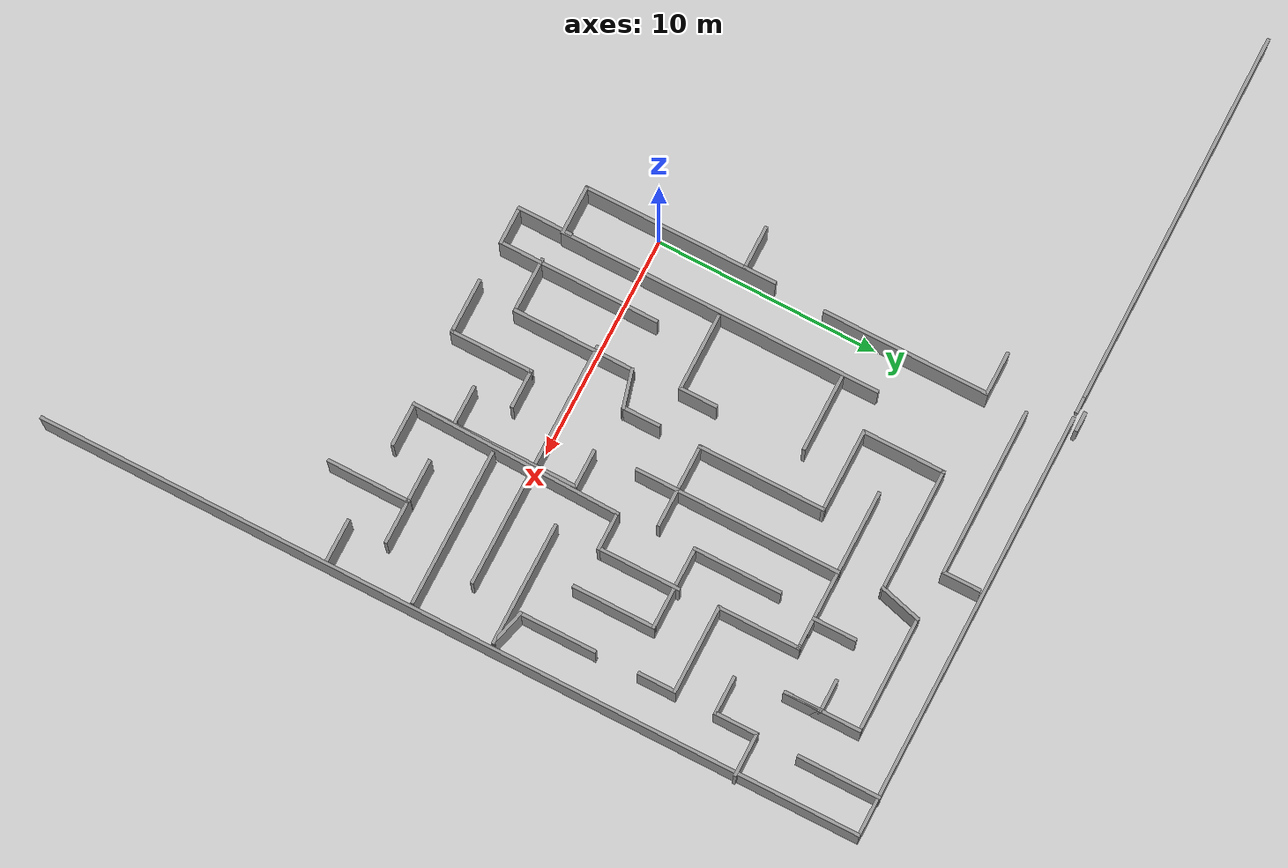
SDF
<sdf version="1.7">
 <world name="default">
  <model name="ground_plane">
   <static>1</static>
   <link name="link">
    <collision name="collision">
     <geometry><plane><normal>0 0 1</normal><size>100 100</size></plane></geometry>
     <surface>
      <contact><collide_bitmask>65535</collide_bitmask></contact>
      <friction><ode><mu>100</mu><mu2>50</mu2></ode></friction>
     </surface>
    </collision>
    <visual name="visual">
     <cast_shadows>0</cast_shadows>
     <geometry><plane><normal>0 0 1</normal><size>100 100</size></plane></geometry>
     <material>
      <script><uri>file://media/materials/scripts/gazebo.material</uri><name>Gazebo/Grey</name></script>
     </material>
    </visual>
   </link>
  </model>
  <model name="maze">
   <pose>-0.086607 -0.007324 0 0 -0 0</pose>
   <link name="Door_0">
    <collision name="Door_0_Collision">
     <geometry><box><size>0.9 0.17 2</size></box></geometry>
     <pose>0 0 1 0 -0 0</pose>
    </collision>
    <visual name="Door_0_Visual">
     <pose>0 0 1 0 -0 0</pose>
     <geometry><box><size>0.9 0.17 2</size></box></geometry>
     <material>
      <script><uri>file://media/materials/scripts/gazebo.material</uri><name>Gazebo/Grey</name></script>
     </material>
    </visual>
    <pose>-0.791347 18.8153 0 0 -0 0</pose>
   </link>
   <link name="Wall_1">
    <pose>-0.020115 18.5034 0 0 -0 0</pose>
    <visual name="Wall_1_Visual_0">
     <pose>-10.0629 0 1.25 0 -0 0</pose>
     <geometry><box><size>16.8742 0.15 2.5</size></box></geometry>
     <material>
      <script><uri>file://media/materials/scripts/gazebo.material</uri><name>Gazebo/Grey</name></script>
      <ambient>1 1 1 1</ambient>
     </material>
     <meta><layer>0</layer></meta>
    </visual>
    <collision name="Wall_1_Collision_0">
     <geometry><box><size>16.8742 0.15 2.5</size></box></geometry>
     <pose>-10.0629 0 1.25 0 -0 0</pose>
    </collision>
    <visual name="Wall_1_Visual_1">
     <pose>8.88711 0 1.25 0 -0 0</pose>
     <geometry><box><size>19.2258 0.15 2.5</size></box></geometry>
     <material>
      <script><uri>file://media/materials/scripts/gazebo.material</uri><name>Gazebo/Grey</name></script>
      <ambient>1 1 1 1</ambient>
     </material>
     <meta><layer>0</layer></meta>
    </visual>
    <collision name="Wall_1_Collision_1">
     <geometry><box><size>19.2258 0.15 2.5</size></box></geometry>
     <pose>8.88711 0 1.25 0 -0 0</pose>
    </collision>
    <visual name="Wall_1_Visual_2">
     <pose>9.25121 0 1.25 0 -0 0</pose>
     <geometry><box><size>18.4976 0.15 2.5</size></box></geometry>
     <material>
      <script><uri>file://media/materials/scripts/gazebo.material</uri><name>Gazebo/Grey</name></script>
      <ambient>1 1 1 1</ambient>
     </material>
     <meta><layer>0</layer></meta>
    </visual>
    <collision name="Wall_1_Collision_2">
     <geometry><box><size>18.4976 0.15 2.5</size></box></geometry>
     <pose>9.25121 0 1.25 0 -0 0</pose>
    </collision>
    <visual name="Wall_1_Visual_3">
     <pose>-1.26169 0 2.25 0 -0 0</pose>
     <geometry><box><size>0.7282 0.15 0.5</size></box></geometry>
     <material>
      <script><uri>file://media/materials/scripts/gazebo.material</uri><name>Gazebo/Grey</name></script>
      <ambient>1 1 1 1</ambient>
     </material>
     <meta><layer>0</layer></meta>
    </visual>
    <collision name="Wall_1_Collision_3">
     <geometry><box><size>0.7282 0.15 0.5</size></box></geometry>
     <pose>-1.26169 0 2.25 0 -0 0</pose>
    </collision>
   </link>
   <link name="Wall_158">
    <collision name="Wall_158_Collision">
     <geometry><box><size>2 0.15 2.5</size></box></geometry>
     <pose>0 0 1.25 0 -0 0</pose>
    </collision>
    <visual name="Wall_158_Visual">
     <pose>0 0 1.25 0 -0 0</pose>
     <geometry><box><size>2 0.15 2.5</size></box></geometry>
     <material>
      <script><uri>file://media/materials/scripts/gazebo.material</uri><name>Gazebo/Grey</name></script>
      <ambient>1 1 1 1</ambient>
     </material>
     <meta><layer>0</layer></meta>
    </visual>
    <pose>-1.03684 3.84659 0 0 -0 0</pose>
   </link>
   <link name="Wall_159">
    <collision name="Wall_159_Collision">
     <geometry><box><size>1.5 0.15 2.5</size></box></geometry>
     <pose>0 0 1.25 0 -0 0</pose>
    </collision>
    <visual name="Wall_159_Visual">
     <pose>0 0 1.25 0 -0 0</pose>
     <geometry><box><size>1.5 0.15 2.5</size></box></geometry>
     <material>
      <script><uri>file://media/materials/scripts/gazebo.material</uri><name>Gazebo/Grey</name></script>
      <ambient>1 1 1 1</ambient>
     </material>
     <meta><layer>0</layer></meta>
    </visual>
    <pose>-0.111838 4.52159 0 0 -0 1.5708</pose>
   </link>
   <link name="Wall_160">
    <collision name="Wall_160_Collision">
     <geometry><box><size>8.75 0.15 2.5</size></box></geometry>
     <pose>0 0 1.25 0 -0 0</pose>
    </collision>
    <visual name="Wall_160_Visual">
     <pose>0 0 1.25 0 -0 0</pose>
     <geometry><box><size>8.75 0.15 2.5</size></box></geometry>
     <material>
      <script><uri>file://media/materials/scripts/gazebo.material</uri><name>Gazebo/Grey</name></script>
      <ambient>1 1 1 1</ambient>
     </material>
     <meta><layer>0</layer></meta>
    </visual>
    <pose>-0.111838 0.896588 0 0 -0 -1.5708</pose>
   </link>
   <link name="Wall_161">
    <collision name="Wall_161_Collision">
     <geometry><box><size>2.25 0.15 2.5</size></box></geometry>
     <pose>0 0 1.25 0 -0 0</pose>
    </collision>
    <visual name="Wall_161_Visual">
     <pose>0 0 1.25 0 -0 0</pose>
     <geometry><box><size>2.25 0.15 2.5</size></box></geometry>
     <material>
      <script><uri>file://media/materials/scripts/gazebo.material</uri><name>Gazebo/Grey</name></script>
      <ambient>1 1 1 1</ambient>
     </material>
     <meta><layer>0</layer></meta>
    </visual>
    <pose>0.938162 -3.40341 0 0 -0 0</pose>
   </link>
   <link name="Wall_162">
    <collision name="Wall_162_Collision">
     <geometry><box><size>14.5 0.15 2.5</size></box></geometry>
     <pose>0 0 1.25 0 -0 0</pose>
    </collision>
    <visual name="Wall_162_Visual">
     <pose>0 0 1.25 0 -0 0</pose>
     <geometry><box><size>14.5 0.15 2.5</size></box></geometry>
     <material>
      <script><uri>file://media/materials/scripts/gazebo.material</uri><name>Gazebo/Grey</name></script>
      <ambient>1 1 1 1</ambient>
     </material>
     <meta><layer>0</layer></meta>
    </visual>
    <pose>1.98816 3.77159 0 0 -0 1.5708</pose>
   </link>
   <link name="Wall_164">
    <collision name="Wall_164_Collision">
     <geometry><box><size>3.5 0.15 2.5</size></box></geometry>
     <pose>0 0 1.25 0 -0 0</pose>
    </collision>
    <visual name="Wall_164_Visual">
     <pose>0 0 1.25 0 -0 0</pose>
     <geometry><box><size>3.5 0.15 2.5</size></box></geometry>
     <material>
      <script><uri>file://media/materials/scripts/gazebo.material</uri><name>Gazebo/Grey</name></script>
      <ambient>1 1 1 1</ambient>
     </material>
     <meta><layer>0</layer></meta>
    </visual>
    <pose>3.75337 9.40987 0 0 -0 0</pose>
   </link>
   <link name="Wall_166">
    <collision name="Wall_166_Collision">
     <geometry><box><size>3.5 0.15 2.5</size></box></geometry>
     <pose>0 0 1.25 0 -0 0</pose>
    </collision>
    <visual name="Wall_166_Visual">
     <pose>0 0 1.25 0 -0 0</pose>
     <geometry><box><size>3.5 0.15 2.5</size></box></geometry>
     <material>
      <script><uri>file://media/materials/scripts/gazebo.material</uri><name>Gazebo/Grey</name></script>
      <ambient>1 1 1 1</ambient>
     </material>
     <meta><layer>0</layer></meta>
    </visual>
    <pose>3.85977 3.82383 0 0 -0 0</pose>
   </link>
   <link name="Wall_167">
    <collision name="Wall_167_Collision">
     <geometry><box><size>1.75 0.15 2.5</size></box></geometry>
     <pose>0 0 1.25 0 -0 0</pose>
    </collision>
    <visual name="Wall_167_Visual">
     <pose>0 0 1.25 0 -0 0</pose>
     <geometry><box><size>1.75 0.15 2.5</size></box></geometry>
     <material>
      <script><uri>file://media/materials/scripts/gazebo.material</uri><name>Gazebo/Grey</name></script>
      <ambient>1 1 1 1</ambient>
     </material>
     <meta><layer>0</layer></meta>
    </visual>
    <pose>5.53477 4.62383 0 0 -0 1.5708</pose>
   </link>
   <link name="Wall_169">
    <collision name="Wall_169_Collision">
     <geometry><box><size>2.5 0.15 2.5</size></box></geometry>
     <pose>0 0 1.25 0 -0 0</pose>
    </collision>
    <visual name="Wall_169_Visual">
     <pose>0 0 1.25 0 -0 0</pose>
     <geometry><box><size>2.5 0.15 2.5</size></box></geometry>
     <material>
      <script><uri>file://media/materials/scripts/gazebo.material</uri><name>Gazebo/Grey</name></script>
      <ambient>1 1 1 1</ambient>
     </material>
     <meta><layer>0</layer></meta>
    </visual>
    <pose>1.91876 -4.26722 0 0 -0 -1.5708</pose>
   </link>
   <link name="Wall_170">
    <collision name="Wall_170_Collision">
     <geometry><box><size>1.75 0.15 2.5</size></box></geometry>
     <pose>0 0 1.25 0 -0 0</pose>
    </collision>
    <visual name="Wall_170_Visual">
     <pose>0 0 1.25 0 -0 0</pose>
     <geometry><box><size>1.75 0.15 2.5</size></box></geometry>
     <material>
      <script><uri>file://media/materials/scripts/gazebo.material</uri><name>Gazebo/Grey</name></script>
      <ambient>1 1 1 1</ambient>
     </material>
     <meta><layer>0</layer></meta>
    </visual>
    <pose>2.71876 -5.44222 0 0 -0 0</pose>
   </link>
   <link name="Wall_171">
    <collision name="Wall_171_Collision">
     <geometry><box><size>7.25 0.15 2.5</size></box></geometry>
     <pose>0 0 1.25 0 -0 0</pose>
    </collision>
    <visual name="Wall_171_Visual">
     <pose>0 0 1.25 0 -0 0</pose>
     <geometry><box><size>7.25 0.15 2.5</size></box></geometry>
     <material>
      <script><uri>file://media/materials/scripts/gazebo.material</uri><name>Gazebo/Grey</name></script>
      <ambient>1 1 1 1</ambient>
     </material>
     <meta><layer>0</layer></meta>
    </visual>
    <pose>3.51876 -1.89222 0 0 -0 1.5708</pose>
   </link>
   <link name="Wall_173">
    <collision name="Wall_173_Collision">
     <geometry><box><size>2.5 0.15 2.5</size></box></geometry>
     <pose>0 0 1.25 0 -0 0</pose>
    </collision>
    <visual name="Wall_173_Visual">
     <pose>0 0 1.25 0 -0 0</pose>
     <geometry><box><size>2.5 0.15 2.5</size></box></geometry>
     <material>
      <script><uri>file://media/materials/scripts/gazebo.material</uri><name>Gazebo/Grey</name></script>
      <ambient>1 1 1 1</ambient>
     </material>
     <meta><layer>0</layer></meta>
    </visual>
    <pose>4.58338 -3.62422 0 0 -0 0</pose>
   </link>
   <link name="Wall_174">
    <collision name="Wall_174_Collision">
     <geometry><box><size>5.5 0.15 2.5</size></box></geometry>
     <pose>0 0 1.25 0 -0 0</pose>
    </collision>
    <visual name="Wall_174_Visual">
     <pose>0 0 1.25 0 -0 0</pose>
     <geometry><box><size>5.5 0.15 2.5</size></box></geometry>
     <material>
      <script><uri>file://media/materials/scripts/gazebo.material</uri><name>Gazebo/Grey</name></script>
      <ambient>1 1 1 1</ambient>
     </material>
     <meta><layer>0</layer></meta>
    </visual>
    <pose>5.75838 -0.949224 0 0 -0 1.5708</pose>
   </link>
   <link name="Wall_175">
    <collision name="Wall_175_Collision">
     <geometry><box><size>1.75 0.15 2.5</size></box></geometry>
     <pose>0 0 1.25 0 -0 0</pose>
    </collision>
    <visual name="Wall_175_Visual">
     <pose>0 0 1.25 0 -0 0</pose>
     <geometry><box><size>1.75 0.15 2.5</size></box></geometry>
     <material>
      <script><uri>file://media/materials/scripts/gazebo.material</uri><name>Gazebo/Grey</name></script>
      <ambient>1 1 1 1</ambient>
     </material>
     <meta><layer>0</layer></meta>
    </visual>
    <pose>6.53112 1.93283 0 0 -0 0.261799</pose>
   </link>
   <link name="Wall_176">
    <collision name="Wall_176_Collision">
     <geometry><box><size>1.75 0.15 2.5</size></box></geometry>
     <pose>0 0 1.25 0 -0 0</pose>
    </collision>
    <visual name="Wall_176_Visual">
     <pose>0 0 1.25 0 -0 0</pose>
     <geometry><box><size>1.75 0.15 2.5</size></box></geometry>
     <material>
      <script><uri>file://media/materials/scripts/gazebo.material</uri><name>Gazebo/Grey</name></script>
      <ambient>1 1 1 1</ambient>
     </material>
     <meta><layer>0</layer></meta>
    </visual>
    <pose>7.30386 2.93989 0 0 -0 1.5708</pose>
   </link>
   <link name="Wall_178">
    <collision name="Wall_178_Collision">
     <geometry><box><size>11 0.15 2.5</size></box></geometry>
     <pose>0 0 1.25 0 -0 0</pose>
    </collision>
    <visual name="Wall_178_Visual">
     <pose>0 0 1.25 0 -0 0</pose>
     <geometry><box><size>11 0.15 2.5</size></box></geometry>
     <material>
      <script><uri>file://media/materials/scripts/gazebo.material</uri><name>Gazebo/Grey</name></script>
      <ambient>1 1 1 1</ambient>
     </material>
     <meta><layer>0</layer></meta>
    </visual>
    <pose>11.0146 0.046603 0 0 -0 0</pose>
   </link>
   <link name="Wall_180">
    <collision name="Wall_180_Collision">
     <geometry><box><size>1.75 0.15 2.5</size></box></geometry>
     <pose>0 0 1.25 0 -0 0</pose>
    </collision>
    <visual name="Wall_180_Visual">
     <pose>0 0 1.25 0 -0 0</pose>
     <geometry><box><size>1.75 0.15 2.5</size></box></geometry>
     <material>
      <script><uri>file://media/materials/scripts/gazebo.material</uri><name>Gazebo/Grey</name></script>
      <ambient>1 1 1 1</ambient>
     </material>
     <meta><layer>0</layer></meta>
    </visual>
    <pose>10.2732 1.90862 0 0 -0 0</pose>
   </link>
   <link name="Wall_181">
    <collision name="Wall_181_Collision">
     <geometry><box><size>7.5 0.15 2.5</size></box></geometry>
     <pose>0 0 1.25 0 -0 0</pose>
    </collision>
    <visual name="Wall_181_Visual">
     <pose>0 0 1.25 0 -0 0</pose>
     <geometry><box><size>7.5 0.15 2.5</size></box></geometry>
     <material>
      <script><uri>file://media/materials/scripts/gazebo.material</uri><name>Gazebo/Grey</name></script>
      <ambient>1 1 1 1</ambient>
     </material>
     <meta><layer>0</layer></meta>
    </visual>
    <pose>11.0732 -1.76638 0 0 -0 -1.5708</pose>
   </link>
   <link name="Wall_182">
    <collision name="Wall_182_Collision">
     <geometry><box><size>2 0.15 2.5</size></box></geometry>
     <pose>0 0 1.25 0 -0 0</pose>
    </collision>
    <visual name="Wall_182_Visual">
     <pose>0 0 1.25 0 -0 0</pose>
     <geometry><box><size>2 0.15 2.5</size></box></geometry>
     <material>
      <script><uri>file://media/materials/scripts/gazebo.material</uri><name>Gazebo/Grey</name></script>
      <ambient>1 1 1 1</ambient>
     </material>
     <meta><layer>0</layer></meta>
    </visual>
    <pose>11.9982 -5.44138 0 0 -0 0</pose>
   </link>
   <link name="Wall_184">
    <collision name="Wall_184_Collision">
     <geometry><box><size>1.75 0.15 2.5</size></box></geometry>
     <pose>0 0 1.25 0 -0 0</pose>
    </collision>
    <visual name="Wall_184_Visual">
     <pose>0 0 1.25 0 -0 0</pose>
     <geometry><box><size>1.75 0.15 2.5</size></box></geometry>
     <material>
      <script><uri>file://media/materials/scripts/gazebo.material</uri><name>Gazebo/Grey</name></script>
      <ambient>1 1 1 1</ambient>
     </material>
     <meta><layer>0</layer></meta>
    </visual>
    <pose>10.1668 -3.62422 0 0 -0 0</pose>
   </link>
   <link name="Wall_186">
    <collision name="Wall_186_Collision">
     <geometry><box><size>4 0.15 2.5</size></box></geometry>
     <pose>0 0 1.25 0 -0 0</pose>
    </collision>
    <visual name="Wall_186_Visual">
     <pose>0 0 1.25 0 -0 0</pose>
     <geometry><box><size>4 0.15 2.5</size></box></geometry>
     <material>
      <script><uri>file://media/materials/scripts/gazebo.material</uri><name>Gazebo/Grey</name></script>
      <ambient>1 1 1 1</ambient>
     </material>
     <meta><layer>0</layer></meta>
    </visual>
    <pose>11.1224 9.29369 0 0 -0 -1.5708</pose>
   </link>
   <link name="Wall_187">
    <collision name="Wall_187_Collision">
     <geometry><box><size>3.75 0.15 2.5</size></box></geometry>
     <pose>0 0 1.25 0 -0 0</pose>
    </collision>
    <visual name="Wall_187_Visual">
     <pose>0 0 1.25 0 -0 0</pose>
     <geometry><box><size>3.75 0.15 2.5</size></box></geometry>
     <material>
      <script><uri>file://media/materials/scripts/gazebo.material</uri><name>Gazebo/Grey</name></script>
      <ambient>1 1 1 1</ambient>
     </material>
     <meta><layer>0</layer></meta>
    </visual>
    <pose>12.9224 7.36869 0 0 -0 0</pose>
   </link>
   <link name="Wall_188">
    <collision name="Wall_188_Collision">
     <geometry><box><size>3.75 0.15 2.5</size></box></geometry>
     <pose>0 0 1.25 0 -0 0</pose>
    </collision>
    <visual name="Wall_188_Visual">
     <pose>0 0 1.25 0 -0 0</pose>
     <geometry><box><size>3.75 0.15 2.5</size></box></geometry>
     <material>
      <script><uri>file://media/materials/scripts/gazebo.material</uri><name>Gazebo/Grey</name></script>
      <ambient>1 1 1 1</ambient>
     </material>
     <meta><layer>0</layer></meta>
    </visual>
    <pose>14.7224 5.56869 0 0 -0 -1.5708</pose>
   </link>
   <link name="Wall_190">
    <collision name="Wall_190_Collision">
     <geometry><box><size>7.25 0.15 2.5</size></box></geometry>
     <pose>0 0 1.25 0 -0 0</pose>
    </collision>
    <visual name="Wall_190_Visual">
     <pose>0 0 1.25 0 -0 0</pose>
     <geometry><box><size>7.25 0.15 2.5</size></box></geometry>
     <material>
      <script><uri>file://media/materials/scripts/gazebo.material</uri><name>Gazebo/Grey</name></script>
      <ambient>1 1 1 1</ambient>
     </material>
     <meta><layer>0</layer></meta>
    </visual>
    <pose>9.24599 12.9211 0 0 -0 0</pose>
   </link>
   <link name="Wall_191">
    <collision name="Wall_191_Collision">
     <geometry><box><size>1.5 0.15 2.5</size></box></geometry>
     <pose>0 0 1.25 0 -0 0</pose>
    </collision>
    <visual name="Wall_191_Visual">
     <pose>0 0 1.25 0 -0 0</pose>
     <geometry><box><size>1.5 0.15 2.5</size></box></geometry>
     <material>
      <script><uri>file://media/materials/scripts/gazebo.material</uri><name>Gazebo/Grey</name></script>
      <ambient>1 1 1 1</ambient>
     </material>
     <meta><layer>0</layer></meta>
    </visual>
    <pose>12.121 12.9211 0 0 -0 3.14159</pose>
   </link>
   <link name="Wall_192">
    <collision name="Wall_192_Collision">
     <geometry><box><size>2 0.15 2.5</size></box></geometry>
     <pose>0 0 1.25 0 -0 0</pose>
    </collision>
    <visual name="Wall_192_Visual">
     <pose>0 0 1.25 0 -0 0</pose>
     <geometry><box><size>2 0.15 2.5</size></box></geometry>
     <material>
      <script><uri>file://media/materials/scripts/gazebo.material</uri><name>Gazebo/Grey</name></script>
      <ambient>1 1 1 1</ambient>
     </material>
     <meta><layer>0</layer></meta>
    </visual>
    <pose>11.446 13.8461 0 0 -0 1.5708</pose>
   </link>
   <link name="Wall_194">
    <collision name="Wall_194_Collision">
     <geometry><box><size>9.25 0.15 2.5</size></box></geometry>
     <pose>0 0 1.25 0 -0 0</pose>
    </collision>
    <visual name="Wall_194_Visual">
     <pose>0 0 1.25 0 -0 0</pose>
     <geometry><box><size>9.25 0.15 2.5</size></box></geometry>
     <material>
      <script><uri>file://media/materials/scripts/gazebo.material</uri><name>Gazebo/Grey</name></script>
      <ambient>1 1 1 1</ambient>
     </material>
     <meta><layer>0</layer></meta>
    </visual>
    <pose>9.31362 8.3711 0 0 -0 -1.5708</pose>
   </link>
   <link name="Wall_196">
    <collision name="Wall_196_Collision">
     <geometry><box><size>3.75 0.15 2.5</size></box></geometry>
     <pose>0 0 1.25 0 -0 0</pose>
    </collision>
    <visual name="Wall_196_Visual">
     <pose>0 0 1.25 0 -0 0</pose>
     <geometry><box><size>3.75 0.15 2.5</size></box></geometry>
     <material>
      <script><uri>file://media/materials/scripts/gazebo.material</uri><name>Gazebo/Grey</name></script>
      <ambient>1 1 1 1</ambient>
     </material>
     <meta><layer>0</layer></meta>
    </visual>
    <pose>9.10963 5.63265 0 0 -0 3.14159</pose>
   </link>
   <link name="Wall_197">
    <collision name="Wall_197_Collision">
     <geometry><box><size>5.75 0.15 2.5</size></box></geometry>
     <pose>0 0 1.25 0 -0 0</pose>
    </collision>
    <visual name="Wall_197_Visual">
     <pose>0 0 1.25 0 -0 0</pose>
     <geometry><box><size>5.75 0.15 2.5</size></box></geometry>
     <material>
      <script><uri>file://media/materials/scripts/gazebo.material</uri><name>Gazebo/Grey</name></script>
      <ambient>1 1 1 1</ambient>
     </material>
     <meta><layer>0</layer></meta>
    </visual>
    <pose>7.30963 8.43265 0 0 -0 1.5708</pose>
   </link>
   <link name="Wall_198">
    <collision name="Wall_198_Collision">
     <geometry><box><size>3.75 0.15 2.5</size></box></geometry>
     <pose>0 0 1.25 0 -0 0</pose>
    </collision>
    <visual name="Wall_198_Visual">
     <pose>0 0 1.25 0 -0 0</pose>
     <geometry><box><size>3.75 0.15 2.5</size></box></geometry>
     <material>
      <script><uri>file://media/materials/scripts/gazebo.material</uri><name>Gazebo/Grey</name></script>
      <ambient>1 1 1 1</ambient>
     </material>
     <meta><layer>0</layer></meta>
    </visual>
    <pose>5.50963 11.2326 0 0 -0 3.14159</pose>
   </link>
   <link name="Wall_199">
    <collision name="Wall_199_Collision">
     <geometry><box><size>3.75 0.15 2.5</size></box></geometry>
     <pose>0 0 1.25 0 -0 0</pose>
    </collision>
    <visual name="Wall_199_Visual">
     <pose>0 0 1.25 0 -0 0</pose>
     <geometry><box><size>3.75 0.15 2.5</size></box></geometry>
     <material>
      <script><uri>file://media/materials/scripts/gazebo.material</uri><name>Gazebo/Grey</name></script>
      <ambient>1 1 1 1</ambient>
     </material>
     <meta><layer>0</layer></meta>
    </visual>
    <pose>3.70963 13.0326 0 0 -0 1.5708</pose>
   </link>
   <link name="Wall_2">
    <collision name="Wall_2_Collision">
     <geometry><box><size>37.1931 0.15 2.5</size></box></geometry>
     <pose>0 0 1.25 0 -0 0</pose>
    </collision>
    <visual name="Wall_2_Visual">
     <pose>0 0 1.25 0 -0 0</pose>
     <geometry><box><size>37.1931 0.15 2.5</size></box></geometry>
     <material>
      <script><uri>file://media/materials/scripts/gazebo.material</uri><name>Gazebo/Grey</name></script>
      <ambient>1 1 1 1</ambient>
     </material>
     <meta><layer>0</layer></meta>
    </visual>
    <pose>18.4592 -0.018103 0 0 -0 -1.56787</pose>
   </link>
   <link name="Wall_200">
    <collision name="Wall_200_Collision">
     <geometry><box><size>5.5 0.15 2.5</size></box></geometry>
     <pose>0 0 1.25 0 -0 0</pose>
    </collision>
    <visual name="Wall_200_Visual">
     <pose>0 0 1.25 0 -0 0</pose>
     <geometry><box><size>5.5 0.15 2.5</size></box></geometry>
     <material>
      <script><uri>file://media/materials/scripts/gazebo.material</uri><name>Gazebo/Grey</name></script>
      <ambient>1 1 1 1</ambient>
     </material>
     <meta><layer>0</layer></meta>
    </visual>
    <pose>6.38463 14.8326 0 0 -0 0</pose>
   </link>
   <link name="Wall_201">
    <collision name="Wall_201_Collision">
     <geometry><box><size>2 0.15 2.5</size></box></geometry>
     <pose>0 0 1.25 0 -0 0</pose>
    </collision>
    <visual name="Wall_201_Visual">
     <pose>0 0 1.25 0 -0 0</pose>
     <geometry><box><size>2 0.15 2.5</size></box></geometry>
     <material>
      <script><uri>file://media/materials/scripts/gazebo.material</uri><name>Gazebo/Grey</name></script>
      <ambient>1 1 1 1</ambient>
     </material>
     <meta><layer>0</layer></meta>
    </visual>
    <pose>9.29904 15.7261 0 0 -0 1.309</pose>
   </link>
   <link name="Wall_202">
    <collision name="Wall_202_Collision">
     <geometry><box><size>5.25 0.15 2.5</size></box></geometry>
     <pose>0 0 1.25 0 -0 0</pose>
    </collision>
    <visual name="Wall_202_Visual">
     <pose>0 0 1.25 0 -0 0</pose>
     <geometry><box><size>5.25 0.15 2.5</size></box></geometry>
     <material>
      <script><uri>file://media/materials/scripts/gazebo.material</uri><name>Gazebo/Grey</name></script>
      <ambient>1 1 1 1</ambient>
     </material>
     <meta><layer>0</layer></meta>
    </visual>
    <pose>12.0884 16.6196 0 0 -0 0</pose>
   </link>
   <link name="Wall_203">
    <collision name="Wall_203_Collision">
     <geometry><box><size>3.5 0.15 2.5</size></box></geometry>
     <pose>0 0 1.25 0 -0 0</pose>
    </collision>
    <visual name="Wall_203_Visual">
     <pose>0 0 1.25 0 -0 0</pose>
     <geometry><box><size>3.5 0.15 2.5</size></box></geometry>
     <material>
      <script><uri>file://media/materials/scripts/gazebo.material</uri><name>Gazebo/Grey</name></script>
      <ambient>1 1 1 1</ambient>
     </material>
     <meta><layer>0</layer></meta>
    </visual>
    <pose>14.6384 14.9446 0 0 -0 -1.5708</pose>
   </link>
   <link name="Wall_204">
    <collision name="Wall_204_Collision">
     <geometry><box><size>1.75 0.15 2.5</size></box></geometry>
     <pose>0 0 1.25 0 -0 0</pose>
    </collision>
    <visual name="Wall_204_Visual">
     <pose>0 0 1.25 0 -0 0</pose>
     <geometry><box><size>1.75 0.15 2.5</size></box></geometry>
     <material>
      <script><uri>file://media/materials/scripts/gazebo.material</uri><name>Gazebo/Grey</name></script>
      <ambient>1 1 1 1</ambient>
     </material>
     <meta><layer>0</layer></meta>
    </visual>
    <pose>14.6384 14.0696 0 0 -0 1.5708</pose>
   </link>
   <link name="Wall_205">
    <collision name="Wall_205_Collision">
     <geometry><box><size>1.5 0.15 2.5</size></box></geometry>
     <pose>0 0 1.25 0 -0 0</pose>
    </collision>
    <visual name="Wall_205_Visual">
     <pose>0 0 1.25 0 -0 0</pose>
     <geometry><box><size>1.5 0.15 2.5</size></box></geometry>
     <material>
      <script><uri>file://media/materials/scripts/gazebo.material</uri><name>Gazebo/Grey</name></script>
      <ambient>1 1 1 1</ambient>
     </material>
     <meta><layer>0</layer></meta>
    </visual>
    <pose>13.9634 14.8696 0 0 -0 3.14159</pose>
   </link>
   <link name="Wall_208">
    <collision name="Wall_208_Collision">
     <geometry><box><size>2 0.15 2.5</size></box></geometry>
     <pose>0 0 1.25 0 -0 0</pose>
    </collision>
    <visual name="Wall_208_Visual">
     <pose>0 0 1.25 0 -0 0</pose>
     <geometry><box><size>2 0.15 2.5</size></box></geometry>
     <material>
      <script><uri>file://media/materials/scripts/gazebo.material</uri><name>Gazebo/Grey</name></script>
      <ambient>1 1 1 1</ambient>
     </material>
     <meta><layer>0</layer></meta>
    </visual>
    <pose>-0.904883 14.9364 0 0 -0 0</pose>
   </link>
   <link name="Wall_209">
    <collision name="Wall_209_Collision">
     <geometry><box><size>7.5 0.15 2.5</size></box></geometry>
     <pose>0 0 1.25 0 -0 0</pose>
    </collision>
    <visual name="Wall_209_Visual">
     <pose>0 0 1.25 0 -0 0</pose>
     <geometry><box><size>7.5 0.15 2.5</size></box></geometry>
     <material>
      <script><uri>file://media/materials/scripts/gazebo.material</uri><name>Gazebo/Grey</name></script>
      <ambient>1 1 1 1</ambient>
     </material>
     <meta><layer>0</layer></meta>
    </visual>
    <pose>0.020117 11.2614 0 0 -0 -1.5708</pose>
   </link>
   <link name="Wall_215">
    <collision name="Wall_215_Collision">
     <geometry><box><size>7.5 0.15 2.5</size></box></geometry>
     <pose>0 0 1.25 0 -0 0</pose>
    </collision>
    <visual name="Wall_215_Visual">
     <pose>0 0 1.25 0 -0 0</pose>
     <geometry><box><size>7.5 0.15 2.5</size></box></geometry>
     <material>
      <script><uri>file://media/materials/scripts/gazebo.material</uri><name>Gazebo/Grey</name></script>
      <ambient>1 1 1 1</ambient>
     </material>
     <meta><layer>0</layer></meta>
    </visual>
    <pose>3.68053 16.701 0 0 -0 0</pose>
   </link>
   <link name="Wall_216">
    <collision name="Wall_216_Collision">
     <geometry><box><size>1.75 0.15 2.5</size></box></geometry>
     <pose>0 0 1.25 0 -0 0</pose>
    </collision>
    <visual name="Wall_216_Visual">
     <pose>0 0 1.25 0 -0 0</pose>
     <geometry><box><size>1.75 0.15 2.5</size></box></geometry>
     <material>
      <script><uri>file://media/materials/scripts/gazebo.material</uri><name>Gazebo/Grey</name></script>
      <ambient>1 1 1 1</ambient>
     </material>
     <meta><layer>0</layer></meta>
    </visual>
    <pose>7.35553 17.501 0 0 -0 1.5708</pose>
   </link>
   <link name="Wall_220">
    <collision name="Wall_220_Collision">
     <geometry><box><size>2.5 0.15 2.5</size></box></geometry>
     <pose>0 0 1.25 0 -0 0</pose>
    </collision>
    <visual name="Wall_220_Visual">
     <pose>0 0 1.25 0 -0 0</pose>
     <geometry><box><size>2.5 0.15 2.5</size></box></geometry>
     <material>
      <script><uri>file://media/materials/scripts/gazebo.material</uri><name>Gazebo/Grey</name></script>
      <ambient>1 1 1 1</ambient>
     </material>
     <meta><layer>0</layer></meta>
    </visual>
    <pose>6.53408 -5.47874 0 0 -0 0</pose>
   </link>
   <link name="Wall_221">
    <collision name="Wall_221_Collision">
     <geometry><box><size>3.75 0.15 2.5</size></box></geometry>
     <pose>0 0 1.25 0 -0 0</pose>
    </collision>
    <visual name="Wall_221_Visual">
     <pose>0 0 1.25 0 -0 0</pose>
     <geometry><box><size>3.75 0.15 2.5</size></box></geometry>
     <material>
      <script><uri>file://media/materials/scripts/gazebo.material</uri><name>Gazebo/Grey</name></script>
      <ambient>1 1 1 1</ambient>
     </material>
     <meta><layer>0</layer></meta>
    </visual>
    <pose>7.70908 -3.67875 0 0 -0 1.5708</pose>
   </link>
   <link name="Wall_222">
    <collision name="Wall_222_Collision">
     <geometry><box><size>1.75 0.15 2.5</size></box></geometry>
     <pose>0 0 1.25 0 -0 0</pose>
    </collision>
    <visual name="Wall_222_Visual">
     <pose>0 0 1.25 0 -0 0</pose>
     <geometry><box><size>1.75 0.15 2.5</size></box></geometry>
     <material>
      <script><uri>file://media/materials/scripts/gazebo.material</uri><name>Gazebo/Grey</name></script>
      <ambient>1 1 1 1</ambient>
     </material>
     <meta><layer>0</layer></meta>
    </visual>
    <pose>8.50908 -1.87875 0 0 -0 0</pose>
   </link>
   <link name="Wall_241">
    <collision name="Wall_241_Collision">
     <geometry><box><size>3.75 0.15 2.5</size></box></geometry>
     <pose>0 0 1.25 0 -0 0</pose>
    </collision>
    <visual name="Wall_241_Visual">
     <pose>0 0 1.25 0 -0 0</pose>
     <geometry><box><size>3.75 0.15 2.5</size></box></geometry>
     <material>
      <script><uri>file://media/materials/scripts/gazebo.material</uri><name>Gazebo/Grey</name></script>
      <ambient>1 1 1 1</ambient>
     </material>
     <meta><layer>0</layer></meta>
    </visual>
    <pose>16.6826 16.7301 0 0 -0 -1.5708</pose>
   </link>
   <link name="Wall_243">
    <collision name="Wall_243_Collision">
     <geometry><box><size>1.75 0.15 2.5</size></box></geometry>
     <pose>0 0 1.25 0 -0 0</pose>
    </collision>
    <visual name="Wall_243_Visual">
     <pose>0 0 1.25 0 -0 0</pose>
     <geometry><box><size>1.75 0.15 2.5</size></box></geometry>
     <material>
      <script><uri>file://media/materials/scripts/gazebo.material</uri><name>Gazebo/Grey</name></script>
      <ambient>1 1 1 1</ambient>
     </material>
     <meta><layer>0</layer></meta>
    </visual>
    <pose>15.8643 11.1672 0 0 -0 0</pose>
   </link>
   <link name="Wall_244">
    <collision name="Wall_244_Collision">
     <geometry><box><size>2 0.15 2.5</size></box></geometry>
     <pose>0 0 1.25 0 -0 0</pose>
    </collision>
    <visual name="Wall_244_Visual">
     <pose>0 0 1.25 0 -0 0</pose>
     <geometry><box><size>2 0.15 2.5</size></box></geometry>
     <material>
      <script><uri>file://media/materials/scripts/gazebo.material</uri><name>Gazebo/Grey</name></script>
      <ambient>1 1 1 1</ambient>
     </material>
     <meta><layer>0</layer></meta>
    </visual>
    <pose>16.6643 12.0922 0 0 -0 1.5708</pose>
   </link>
   <link name="Wall_245">
    <collision name="Wall_245_Collision">
     <geometry><box><size>2 0.15 2.5</size></box></geometry>
     <pose>0 0 1.25 0 -0 0</pose>
    </collision>
    <visual name="Wall_245_Visual">
     <pose>0 0 1.25 0 -0 0</pose>
     <geometry><box><size>2 0.15 2.5</size></box></geometry>
     <material>
      <script><uri>file://media/materials/scripts/gazebo.material</uri><name>Gazebo/Grey</name></script>
      <ambient>1 1 1 1</ambient>
     </material>
     <meta><layer>0</layer></meta>
    </visual>
    <pose>17.5893 13.0172 0 0 -0 0</pose>
   </link>
   <link name="Wall_247">
    <collision name="Wall_247_Collision">
     <geometry><box><size>5.5 0.15 2.5</size></box></geometry>
     <pose>0 0 1.25 0 -0 0</pose>
    </collision>
    <visual name="Wall_247_Visual">
     <pose>0 0 1.25 0 -0 0</pose>
     <geometry><box><size>5.5 0.15 2.5</size></box></geometry>
     <material>
      <script><uri>file://media/materials/scripts/gazebo.material</uri><name>Gazebo/Grey</name></script>
      <ambient>1 1 1 1</ambient>
     </material>
     <meta><layer>0</layer></meta>
    </visual>
    <pose>15.5547 1.94334 0 0 -0 0</pose>
   </link>
   <link name="Wall_248">
    <collision name="Wall_248_Collision">
     <geometry><box><size>1.75 0.15 2.5</size></box></geometry>
     <pose>0 0 1.25 0 -0 0</pose>
    </collision>
    <visual name="Wall_248_Visual">
     <pose>0 0 1.25 0 -0 0</pose>
     <geometry><box><size>1.75 0.15 2.5</size></box></geometry>
     <material>
      <script><uri>file://media/materials/scripts/gazebo.material</uri><name>Gazebo/Grey</name></script>
      <ambient>1 1 1 1</ambient>
     </material>
     <meta><layer>0</layer></meta>
    </visual>
    <pose>17.457 2.1504 0 0 -0 2.87979</pose>
   </link>
   <link name="Wall_249">
    <collision name="Wall_249_Collision">
     <geometry><box><size>3.5 0.15 2.5</size></box></geometry>
     <pose>0 0 1.25 0 -0 0</pose>
    </collision>
    <visual name="Wall_249_Visual">
     <pose>0 0 1.25 0 -0 0</pose>
     <geometry><box><size>3.5 0.15 2.5</size></box></geometry>
     <material>
      <script><uri>file://media/materials/scripts/gazebo.material</uri><name>Gazebo/Grey</name></script>
      <ambient>1 1 1 1</ambient>
     </material>
     <meta><layer>0</layer></meta>
    </visual>
    <pose>16.6843 4.03245 0 0 -0 1.5708</pose>
   </link>
   <link name="Wall_251">
    <collision name="Wall_251_Collision">
     <geometry><box><size>7 0.15 2.5</size></box></geometry>
     <pose>0 0 1.25 0 -0 0</pose>
    </collision>
    <visual name="Wall_251_Visual">
     <pose>0 0 1.25 0 -0 0</pose>
     <geometry><box><size>7 0.15 2.5</size></box></geometry>
     <material>
      <script><uri>file://media/materials/scripts/gazebo.material</uri><name>Gazebo/Grey</name></script>
      <ambient>1 1 1 1</ambient>
     </material>
     <meta><layer>0</layer></meta>
    </visual>
    <pose>14.8483 -1.69766 0 0 -0 0</pose>
   </link>
   <link name="Wall_253">
    <collision name="Wall_253_Collision">
     <geometry><box><size>11 0.15 2.5</size></box></geometry>
     <pose>0 0 1.25 0 -0 0</pose>
    </collision>
    <visual name="Wall_253_Visual">
     <pose>0 0 1.25 0 -0 0</pose>
     <geometry><box><size>11 0.15 2.5</size></box></geometry>
     <material>
      <script><uri>file://media/materials/scripts/gazebo.material</uri><name>Gazebo/Grey</name></script>
      <ambient>1 1 1 1</ambient>
     </material>
     <meta><layer>0</layer></meta>
    </visual>
    <pose>11.0146 0.046603 0 0 -0 0</pose>
   </link>
   <link name="Wall_255">
    <collision name="Wall_255_Collision">
     <geometry><box><size>3.75 0.15 2.5</size></box></geometry>
     <pose>0 0 1.25 0 -0 0</pose>
    </collision>
    <visual name="Wall_255_Visual">
     <pose>0 0 1.25 0 -0 0</pose>
     <geometry><box><size>3.75 0.15 2.5</size></box></geometry>
     <material>
      <script><uri>file://media/materials/scripts/gazebo.material</uri><name>Gazebo/Grey</name></script>
      <ambient>1 1 1 1</ambient>
     </material>
     <meta><layer>0</layer></meta>
    </visual>
    <pose>12.8797 5.72621 0 0 -0 -1.5708</pose>
   </link>
   <link name="Wall_256">
    <collision name="Wall_256_Collision">
     <geometry><box><size>1.75 0.15 2.5</size></box></geometry>
     <pose>0 0 1.25 0 -0 0</pose>
    </collision>
    <visual name="Wall_256_Visual">
     <pose>0 0 1.25 0 -0 0</pose>
     <geometry><box><size>1.75 0.15 2.5</size></box></geometry>
     <material>
      <script><uri>file://media/materials/scripts/gazebo.material</uri><name>Gazebo/Grey</name></script>
      <ambient>1 1 1 1</ambient>
     </material>
     <meta><layer>0</layer></meta>
    </visual>
    <pose>12.0797 3.92621 0 0 -0 3.14159</pose>
   </link>
   <link name="Wall_257">
    <collision name="Wall_257_Collision">
     <geometry><box><size>9.51987 0.15 2.5</size></box></geometry>
     <pose>0 0 1.25 0 -0 0</pose>
    </collision>
    <visual name="Wall_257_Visual">
     <pose>0 0 1.25 0 -0 0</pose>
     <geometry><box><size>9.51987 0.15 2.5</size></box></geometry>
     <material>
      <script><uri>file://media/materials/scripts/gazebo.material</uri><name>Gazebo/Grey</name></script>
      <ambient>1 1 1 1</ambient>
     </material>
     <meta><layer>0</layer></meta>
    </visual>
    <pose>11.1765 -0.757585 0 0 -0 -1.59284</pose>
   </link>
   <link name="Wall_258">
    <collision name="Wall_258_Collision">
     <geometry><box><size>2 0.15 2.5</size></box></geometry>
     <pose>0 0 1.25 0 -0 0</pose>
    </collision>
    <visual name="Wall_258_Visual">
     <pose>0 0 1.25 0 -0 0</pose>
     <geometry><box><size>2 0.15 2.5</size></box></geometry>
     <material>
      <script><uri>file://media/materials/scripts/gazebo.material</uri><name>Gazebo/Grey</name></script>
      <ambient>1 1 1 1</ambient>
     </material>
     <meta><layer>0</layer></meta>
    </visual>
    <pose>11.9982 -5.44138 0 0 -0 0</pose>
   </link>
   <link name="Wall_260">
    <collision name="Wall_260_Collision">
     <geometry><box><size>1.75 0.15 2.5</size></box></geometry>
     <pose>0 0 1.25 0 -0 0</pose>
    </collision>
    <visual name="Wall_260_Visual">
     <pose>0 0 1.25 0 -0 0</pose>
     <geometry><box><size>1.75 0.15 2.5</size></box></geometry>
     <material>
      <script><uri>file://media/materials/scripts/gazebo.material</uri><name>Gazebo/Grey</name></script>
      <ambient>1 1 1 1</ambient>
     </material>
     <meta><layer>0</layer></meta>
    </visual>
    <pose>10.1668 -3.62422 0 0 -0 0</pose>
   </link>
   <link name="Wall_261">
    <collision name="Wall_261_Collision">
     <geometry><box><size>0.25 0.15 2.5</size></box></geometry>
     <pose>0 0 1.25 0 -0 0</pose>
    </collision>
    <visual name="Wall_261_Visual">
     <pose>0 0 1.25 0 -0 0</pose>
     <geometry><box><size>0.25 0.15 2.5</size></box></geometry>
     <material>
      <script><uri>file://media/materials/scripts/gazebo.material</uri><name>Gazebo/Grey</name></script>
      <ambient>1 1 1 1</ambient>
     </material>
     <meta><layer>0</layer></meta>
    </visual>
    <pose>11.0168 -3.62422 0 0 -0 0</pose>
   </link>
   <link name="Wall_267">
    <collision name="Wall_267_Collision">
     <geometry><box><size>3.75 0.15 2.5</size></box></geometry>
     <pose>0 0 1.25 0 -0 0</pose>
    </collision>
    <visual name="Wall_267_Visual">
     <pose>0 0 1.25 0 -0 0</pose>
     <geometry><box><size>3.75 0.15 2.5</size></box></geometry>
     <material>
      <script><uri>file://media/materials/scripts/gazebo.material</uri><name>Gazebo/Grey</name></script>
      <ambient>1 1 1 1</ambient>
     </material>
     <meta><layer>0</layer></meta>
    </visual>
    <pose>14.7193 -5.60435 0 0 -0 1.5708</pose>
   </link>
   <link name="Wall_268">
    <collision name="Wall_268_Collision">
     <geometry><box><size>0.16 0.15 2.5</size></box></geometry>
     <pose>0 0 1.25 0 -0 0</pose>
    </collision>
    <visual name="Wall_268_Visual">
     <pose>0 0 1.25 0 -0 0</pose>
     <geometry><box><size>0.16 0.15 2.5</size></box></geometry>
     <material>
      <script><uri>file://media/materials/scripts/gazebo.material</uri><name>Gazebo/Grey</name></script>
      <ambient>1 1 1 1</ambient>
     </material>
     <meta><layer>0</layer></meta>
    </visual>
    <pose>14.7243 -3.80435 0 0 -0 0</pose>
   </link>
   <link name="Wall_269">
    <collision name="Wall_269_Collision">
     <geometry><box><size>0.16 0.15 2.5</size></box></geometry>
     <pose>0 0 1.25 0 -0 0</pose>
    </collision>
    <visual name="Wall_269_Visual">
     <pose>0 0 1.25 0 -0 0</pose>
     <geometry><box><size>0.16 0.15 2.5</size></box></geometry>
     <material>
      <script><uri>file://media/materials/scripts/gazebo.material</uri><name>Gazebo/Grey</name></script>
      <ambient>1 1 1 1</ambient>
     </material>
     <meta><layer>0</layer></meta>
    </visual>
    <pose>14.7343 -3.80435 0 0 -0 0</pose>
   </link>
   <link name="Wall_270">
    <collision name="Wall_270_Collision">
     <geometry><box><size>2 0.15 2.5</size></box></geometry>
     <pose>0 0 1.25 0 -0 0</pose>
    </collision>
    <visual name="Wall_270_Visual">
     <pose>0 0 1.25 0 -0 0</pose>
     <geometry><box><size>2 0.15 2.5</size></box></geometry>
     <material>
      <script><uri>file://media/materials/scripts/gazebo.material</uri><name>Gazebo/Grey</name></script>
      <ambient>1 1 1 1</ambient>
     </material>
     <meta><layer>0</layer></meta>
    </visual>
    <pose>13.8143 -3.80435 0 0 -0 3.14159</pose>
   </link>
   <link name="Wall_272">
    <collision name="Wall_272_Collision">
     <geometry><box><size>2 0.15 2.5</size></box></geometry>
     <pose>0 0 1.25 0 -0 0</pose>
    </collision>
    <visual name="Wall_272_Visual">
     <pose>0 0 1.25 0 -0 0</pose>
     <geometry><box><size>2 0.15 2.5</size></box></geometry>
     <material>
      <script><uri>file://media/materials/scripts/gazebo.material</uri><name>Gazebo/Grey</name></script>
      <ambient>1 1 1 1</ambient>
     </material>
     <meta><layer>0</layer></meta>
    </visual>
    <pose>15.6643 -3.80435 0 0 -0 0</pose>
   </link>
   <link name="Wall_291">
    <collision name="Wall_291_Collision">
     <geometry><box><size>2 0.15 2.5</size></box></geometry>
     <pose>0 0 1.25 0 -0 0</pose>
    </collision>
    <visual name="Wall_291_Visual">
     <pose>0 0 1.25 0 -0 0</pose>
     <geometry><box><size>2 0.15 2.5</size></box></geometry>
     <material>
      <script><uri>file://media/materials/scripts/gazebo.material</uri><name>Gazebo/Grey</name></script>
      <ambient>1 1 1 1</ambient>
     </material>
     <meta><layer>0</layer></meta>
    </visual>
    <pose>17.4688 -5.56956 0 0 -0 0</pose>
   </link>
   <link name="Wall_299">
    <collision name="Wall_299_Collision">
     <geometry><box><size>3.75 0.15 2.5</size></box></geometry>
     <pose>0 0 1.25 0 -0 0</pose>
    </collision>
    <visual name="Wall_299_Visual">
     <pose>0 0 1.25 0 -0 0</pose>
     <geometry><box><size>3.75 0.15 2.5</size></box></geometry>
     <material>
      <script><uri>file://media/materials/scripts/gazebo.material</uri><name>Gazebo/Grey</name></script>
      <ambient>1 1 1 1</ambient>
     </material>
     <meta><layer>0</layer></meta>
    </visual>
    <pose>12.796 11.1211 0 0 -0 -1.5708</pose>
   </link>
   <link name="Wall_300">
    <collision name="Wall_300_Collision">
     <geometry><box><size>4 0.15 2.5</size></box></geometry>
     <pose>0 0 1.25 0 -0 0</pose>
    </collision>
    <visual name="Wall_300_Visual">
     <pose>0 0 1.25 0 -0 0</pose>
     <geometry><box><size>4 0.15 2.5</size></box></geometry>
     <material>
      <script><uri>file://media/materials/scripts/gazebo.material</uri><name>Gazebo/Grey</name></script>
      <ambient>1 1 1 1</ambient>
     </material>
     <meta><layer>0</layer></meta>
    </visual>
    <pose>14.721 9.3211 0 0 -0 0</pose>
   </link>
   <link name="Wall_301">
    <collision name="Wall_301_Collision">
     <geometry><box><size>1.75 0.15 2.5</size></box></geometry>
     <pose>0 0 1.25 0 -0 0</pose>
    </collision>
    <visual name="Wall_301_Visual">
     <pose>0 0 1.25 0 -0 0</pose>
     <geometry><box><size>1.75 0.15 2.5</size></box></geometry>
     <material>
      <script><uri>file://media/materials/scripts/gazebo.material</uri><name>Gazebo/Grey</name></script>
      <ambient>1 1 1 1</ambient>
     </material>
     <meta><layer>0</layer></meta>
    </visual>
    <pose>16.646 8.5211 0 0 -0 -1.5708</pose>
   </link>
   <static>1</static>
  </model>
 </world>
</sdf>
